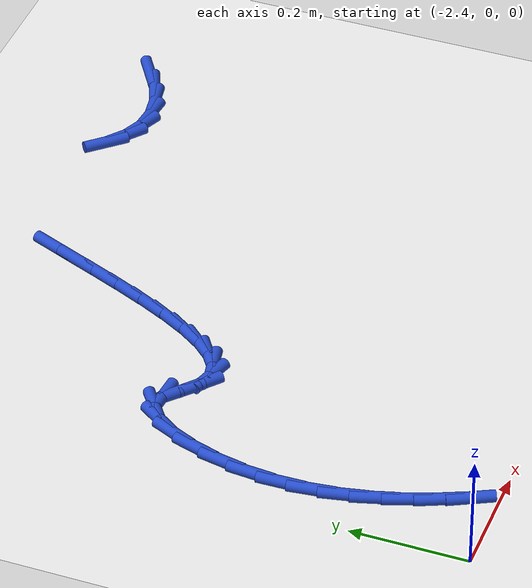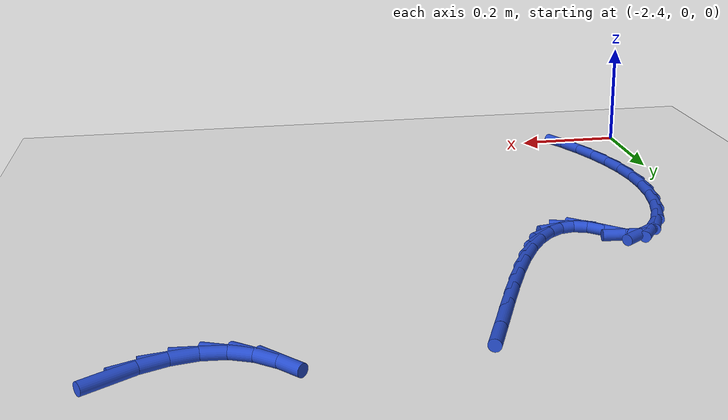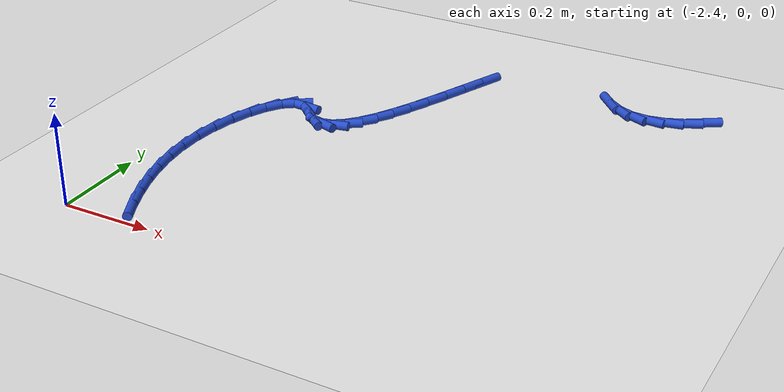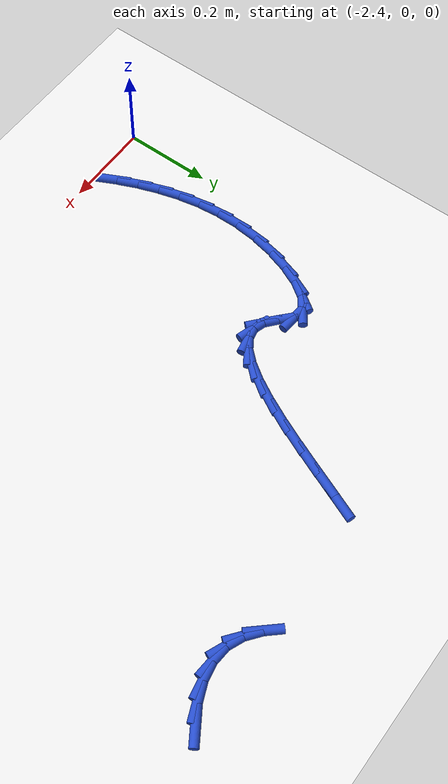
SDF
<sdf version="1.6">
 <world name="default">
  <model name="ground_plane">
   <static>1</static>
   <link name="link">
    <collision name="collision">
     <geometry><plane><normal>0 0 1</normal><size>100 100</size></plane></geometry>
     <surface><friction><ode><mu>100</mu><mu2>50</mu2></ode></friction></surface>
    </collision>
    <visual name="visual">
     <cast_shadows>0</cast_shadows>
     <geometry><plane><normal>0 0 1</normal><size>100 100</size></plane></geometry>
     <material>
      <script><uri>file://media/materials/scripts/gazebo.material</uri><name>Gazebo/WhiteGlow</name></script>
     </material>
    </visual>
   </link>
  </model>
  <model name="line">
   <link name="link_87">
    <pose>-1.4025349442492723 0.9285873915843484 0.01 0 1.57 0.5660764527378578</pose>
    <collision name="collision">
     <geometry><cylinder><radius>0.01</radius><length>0.08</length></cylinder></geometry>
    </collision>
    <visual name="visual">
     <material>
      <script><name>Gazebo/Blue</name><uri>file://media/materials/scripts/gazebo.material</uri></script>
     </material>
     <geometry><cylinder><radius>0.01</radius><length>0.08</length></cylinder></geometry>
    </visual>
   </link>
   <link name="link_88">
    <pose>-1.4384386506371187 0.9057724923210335 0.01 0 1.57 0.38805845490592716</pose>
    <collision name="collision">
     <geometry><cylinder><radius>0.01</radius><length>0.08</length></cylinder></geometry>
    </collision>
    <visual name="visual">
     <material>
      <script><name>Gazebo/Blue</name><uri>file://media/materials/scripts/gazebo.material</uri></script>
     </material>
     <geometry><cylinder><radius>0.01</radius><length>0.08</length></cylinder></geometry>
    </visual>
   </link>
   <link name="link_89">
    <pose>-1.4769204122554138 0.890041643750899 0.01 0 1.57 0.17952113242083353</pose>
    <collision name="collision">
     <geometry><cylinder><radius>0.01</radius><length>0.08</length></cylinder></geometry>
    </collision>
    <visual name="visual">
     <material>
      <script><name>Gazebo/Blue</name><uri>file://media/materials/scripts/gazebo.material</uri></script>
     </material>
     <geometry><cylinder><radius>0.01</radius><length>0.08</length></cylinder></geometry>
    </visual>
   </link>
   <link name="link_90">
    <pose>-1.5159713133353925 0.8829548874197626 0.01 0 1.57 -0.08269542943411845</pose>
    <collision name="collision">
     <geometry><cylinder><radius>0.01</radius><length>0.08</length></cylinder></geometry>
    </collision>
    <visual name="visual">
     <material>
      <script><name>Gazebo/Blue</name><uri>file://media/materials/scripts/gazebo.material</uri></script>
     </material>
     <geometry><cylinder><radius>0.01</radius><length>0.08</length></cylinder></geometry>
    </visual>
   </link>
   <link name="link_91">
    <pose>-1.5535824381082903 0.886072264873442 0.01 0 1.57 -0.3985117832205126</pose>
    <collision name="collision">
     <geometry><cylinder><radius>0.01</radius><length>0.08</length></cylinder></geometry>
    </collision>
    <visual name="visual">
     <material>
      <script><name>Gazebo/Blue</name><uri>file://media/materials/scripts/gazebo.material</uri></script>
     </material>
     <geometry><cylinder><radius>0.01</radius><length>0.08</length></cylinder></geometry>
    </visual>
   </link>
   <link name="link_92">
    <pose>-1.5879641545684764 0.9005483454843594 0.01 0 1.57 -0.6618012455043877</pose>
    <collision name="collision">
     <geometry><cylinder><radius>0.01</radius><length>0.08</length></cylinder></geometry>
    </collision>
    <visual name="visual">
     <material>
      <script><name>Gazebo/Blue</name><uri>file://media/materials/scripts/gazebo.material</uri></script>
     </material>
     <geometry><cylinder><radius>0.01</radius><length>0.08</length></cylinder></geometry>
    </visual>
   </link>
   <link name="link_93">
    <pose>-1.6188929875772953 0.9246417567655727 0.01 0 1.57 -0.8327021276823403</pose>
    <collision name="collision">
     <geometry><cylinder><radius>0.01</radius><length>0.08</length></cylinder></geometry>
    </collision>
    <visual name="visual">
     <material>
      <script><name>Gazebo/Blue</name><uri>file://media/materials/scripts/gazebo.material</uri></script>
     </material>
     <geometry><cylinder><radius>0.01</radius><length>0.08</length></cylinder></geometry>
    </visual>
   </link>
   <link name="link_107">
    <pose>-1.9172911480258716 0.8962261865186396 0.01 0 1.57 1.1850074836020938</pose>
    <collision name="collision">
     <geometry><cylinder><radius>0.01</radius><length>0.08</length></cylinder></geometry>
    </collision>
    <visual name="visual">
     <material>
      <script><name>Gazebo/Blue</name><uri>file://media/materials/scripts/gazebo.material</uri></script>
     </material>
     <geometry><cylinder><radius>0.01</radius><length>0.08</length></cylinder></geometry>
    </visual>
   </link>
   <link name="link_108">
    <pose>-1.9380207335606814 0.8451857813252498 0.01 0 1.57 1.1853528680369556</pose>
    <collision name="collision">
     <geometry><cylinder><radius>0.01</radius><length>0.08</length></cylinder></geometry>
    </collision>
    <visual name="visual">
     <material>
      <script><name>Gazebo/Blue</name><uri>file://media/materials/scripts/gazebo.material</uri></script>
     </material>
     <geometry><cylinder><radius>0.01</radius><length>0.08</length></cylinder></geometry>
    </visual>
   </link>
   <link name="link_109">
    <pose>-1.9590209984977067 0.7934276404564319 0.01 0 1.57 1.1752377018405062</pose>
    <collision name="collision">
     <geometry><cylinder><radius>0.01</radius><length>0.08</length></cylinder></geometry>
    </collision>
    <visual name="visual">
     <material>
      <script><name>Gazebo/Blue</name><uri>file://media/materials/scripts/gazebo.material</uri></script>
     </material>
     <geometry><cylinder><radius>0.01</radius><length>0.08</length></cylinder></geometry>
    </visual>
   </link>
   <link name="link_110">
    <pose>-1.9803211213497292 0.7424176546266419 0.01 0 1.57 1.1535637155977692</pose>
    <collision name="collision">
     <geometry><cylinder><radius>0.01</radius><length>0.08</length></cylinder></geometry>
    </collision>
    <visual name="visual">
     <material>
      <script><name>Gazebo/Blue</name><uri>file://media/materials/scripts/gazebo.material</uri></script>
     </material>
     <geometry><cylinder><radius>0.01</radius><length>0.08</length></cylinder></geometry>
    </visual>
   </link>
   <link name="link_111">
    <pose>-2.0019502806295306 0.6936217145503365 0.01 0 1.57 1.1173182251493785</pose>
    <collision name="collision">
     <geometry><cylinder><radius>0.01</radius><length>0.08</length></cylinder></geometry>
    </collision>
    <visual name="visual">
     <material>
      <script><name>Gazebo/Blue</name><uri>file://media/materials/scripts/gazebo.material</uri></script>
     </material>
     <geometry><cylinder><radius>0.01</radius><length>0.08</length></cylinder></geometry>
    </visual>
   </link>
   <link name="link_112">
    <pose>-2.0239376548498904 0.6485057109419716 0.01 0 1.57 1.0604705023493375</pose>
    <collision name="collision">
     <geometry><cylinder><radius>0.01</radius><length>0.08</length></cylinder></geometry>
    </collision>
    <visual name="visual">
     <material>
      <script><name>Gazebo/Blue</name><uri>file://media/materials/scripts/gazebo.material</uri></script>
     </material>
     <geometry><cylinder><radius>0.01</radius><length>0.08</length></cylinder></geometry>
    </visual>
   </link>
   <link name="link_113">
    <pose>-2.0463124225235907 0.6085355345160044 0.01 0 1.57 0.9714175561255046</pose>
    <collision name="collision">
     <geometry><cylinder><radius>0.01</radius><length>0.08</length></cylinder></geometry>
    </collision>
    <visual name="visual">
     <material>
      <script><name>Gazebo/Blue</name><uri>file://media/materials/scripts/gazebo.material</uri></script>
     </material>
     <geometry><cylinder><radius>0.01</radius><length>0.08</length></cylinder></geometry>
    </visual>
   </link>
   <link name="link_114">
    <pose>-2.0691037621634134 0.5751770759868899 0.01 0 1.57 0.8274970706766107</pose>
    <collision name="collision">
     <geometry><cylinder><radius>0.01</radius><length>0.08</length></cylinder></geometry>
    </collision>
    <visual name="visual">
     <material>
      <script><name>Gazebo/Blue</name><uri>file://media/materials/scripts/gazebo.material</uri></script>
     </material>
     <geometry><cylinder><radius>0.01</radius><length>0.08</length></cylinder></geometry>
    </visual>
   </link>
   <link name="link_115">
    <pose>-2.0923408522821383 0.5498962260690852 0.01 0 1.57 0.5859366784323105</pose>
    <collision name="collision">
     <geometry><cylinder><radius>0.01</radius><length>0.08</length></cylinder></geometry>
    </collision>
    <visual name="visual">
     <material>
      <script><name>Gazebo/Blue</name><uri>file://media/materials/scripts/gazebo.material</uri></script>
     </material>
     <geometry><cylinder><radius>0.01</radius><length>0.08</length></cylinder></geometry>
    </visual>
   </link>
   <link name="link_116">
    <pose>-2.1160528713925473 0.5341588754770464 0.01 0 1.57 0.19281463411330696</pose>
    <collision name="collision">
     <geometry><cylinder><radius>0.01</radius><length>0.08</length></cylinder></geometry>
    </collision>
    <visual name="visual">
     <material>
      <script><name>Gazebo/Blue</name><uri>file://media/materials/scripts/gazebo.material</uri></script>
     </material>
     <geometry><cylinder><radius>0.01</radius><length>0.08</length></cylinder></geometry>
    </visual>
   </link>
   <link name="link_117">
    <pose>-2.1402689980074214 0.5294309149252301 0.01 0 1.57 -0.3033680681088193</pose>
    <collision name="collision">
     <geometry><cylinder><radius>0.01</radius><length>0.08</length></cylinder></geometry>
    </collision>
    <visual name="visual">
     <material>
      <script><name>Gazebo/Blue</name><uri>file://media/materials/scripts/gazebo.material</uri></script>
     </material>
     <geometry><cylinder><radius>0.01</radius><length>0.08</length></cylinder></geometry>
    </visual>
   </link>
   <link name="link_118">
    <pose>-2.165018410639542 0.5371782351280925 0.01 0 1.57 -0.704990971469583</pose>
    <collision name="collision">
     <geometry><cylinder><radius>0.01</radius><length>0.08</length></cylinder></geometry>
    </collision>
    <visual name="visual">
     <material>
      <script><name>Gazebo/Blue</name><uri>file://media/materials/scripts/gazebo.material</uri></script>
     </material>
     <geometry><cylinder><radius>0.01</radius><length>0.08</length></cylinder></geometry>
    </visual>
   </link>
   <link name="link_119">
    <pose>-2.1903298773432733 0.5587146556413424 0.01 0 1.57 -0.7376378997931051</pose>
    <collision name="collision">
     <geometry><cylinder><radius>0.01</radius><length>0.08</length></cylinder></geometry>
    </collision>
    <visual name="visual">
     <material>
      <script><name>Gazebo/Blue</name><uri>file://media/materials/scripts/gazebo.material</uri></script>
     </material>
     <geometry><cylinder><radius>0.01</radius><length>0.08</length></cylinder></geometry>
    </visual>
   </link>
   <link name="link_120">
    <pose>-2.216195262202356 0.5822202738630822 0.01 0 1.57 -0.08412699800230153</pose>
    <collision name="collision">
     <geometry><cylinder><radius>0.01</radius><length>0.08</length></cylinder></geometry>
    </collision>
    <visual name="visual">
     <material>
      <script><name>Gazebo/Blue</name><uri>file://media/materials/scripts/gazebo.material</uri></script>
     </material>
     <geometry><cylinder><radius>0.01</radius><length>0.08</length></cylinder></geometry>
    </visual>
   </link>
   <link name="link_121">
    <pose>-2.24224068372582 0.5844165807794491 0.01 0 1.57 0.6235600047182205</pose>
    <collision name="collision">
     <geometry><cylinder><radius>0.01</radius><length>0.08</length></cylinder></geometry>
    </collision>
    <visual name="visual">
     <material>
      <script><name>Gazebo/Blue</name><uri>file://media/materials/scripts/gazebo.material</uri></script>
     </material>
     <geometry><cylinder><radius>0.01</radius><length>0.08</length></cylinder></geometry>
    </visual>
   </link>
   <link name="link_122">
    <pose>-2.2673973797924774 0.56632144120149 0.01 0 1.57 0.9696503871079706</pose>
    <collision name="collision">
     <geometry><cylinder><radius>0.01</radius><length>0.08</length></cylinder></geometry>
    </collision>
    <visual name="visual">
     <material>
      <script><name>Gazebo/Blue</name><uri>file://media/materials/scripts/gazebo.material</uri></script>
     </material>
     <geometry><cylinder><radius>0.01</radius><length>0.08</length></cylinder></geometry>
    </visual>
   </link>
   <link name="link_123">
    <pose>-2.290501511676158 0.5326331296847582 0.01 0 1.57 1.151206096547525</pose>
    <collision name="collision">
     <geometry><cylinder><radius>0.01</radius><length>0.08</length></cylinder></geometry>
    </collision>
    <visual name="visual">
     <material>
      <script><name>Gazebo/Blue</name><uri>file://media/materials/scripts/gazebo.material</uri></script>
     </material>
     <geometry><cylinder><radius>0.01</radius><length>0.08</length></cylinder></geometry>
    </visual>
   </link>
   <link name="link_124">
    <pose>-2.310389240650694 0.4880499207848046 0.01 0 1.57 1.2744049238574042</pose>
    <collision name="collision">
     <geometry><cylinder><radius>0.01</radius><length>0.08</length></cylinder></geometry>
    </collision>
    <visual name="visual">
     <material>
      <script><name>Gazebo/Blue</name><uri>file://media/materials/scripts/gazebo.material</uri></script>
     </material>
     <geometry><cylinder><radius>0.01</radius><length>0.08</length></cylinder></geometry>
    </visual>
   </link>
   <link name="link_125">
    <pose>-2.3258967279899174 0.4372700890571819 0.01 0 1.57 1.3821191101935049</pose>
    <collision name="collision">
     <geometry><cylinder><radius>0.01</radius><length>0.08</length></cylinder></geometry>
    </collision>
    <visual name="visual">
     <material>
      <script><name>Gazebo/Blue</name><uri>file://media/materials/scripts/gazebo.material</uri></script>
     </material>
     <geometry><cylinder><radius>0.01</radius><length>0.08</length></cylinder></geometry>
    </visual>
   </link>
   <link name="link_126">
    <pose>-2.3359006506889335 0.38487939770383384 0.01 0 1.57 1.4896954531738034</pose>
    <collision name="collision">
     <geometry><cylinder><radius>0.01</radius><length>0.08</length></cylinder></geometry>
    </collision>
    <visual name="visual">
     <material>
      <script><name>Gazebo/Blue</name><uri>file://media/materials/scripts/gazebo.material</uri></script>
     </material>
     <geometry><cylinder><radius>0.01</radius><length>0.08</length></cylinder></geometry>
    </visual>
   </link>
   <link name="link_127">
    <pose>-2.340103524611591 0.333170271783767 0.01 0 1.57 -1.5486922036520716</pose>
    <collision name="collision">
     <geometry><cylinder><radius>0.01</radius><length>0.08</length></cylinder></geometry>
    </collision>
    <visual name="visual">
     <material>
      <script><name>Gazebo/Blue</name><uri>file://media/materials/scripts/gazebo.material</uri></script>
     </material>
     <geometry><cylinder><radius>0.01</radius><length>0.08</length></cylinder></geometry>
    </visual>
   </link>
   <link name="link_128">
    <pose>-2.33897877356934 0.28229434029051603 0.01 0 1.57 -1.45230114894608</pose>
    <collision name="collision">
     <geometry><cylinder><radius>0.01</radius><length>0.08</length></cylinder></geometry>
    </collision>
    <visual name="visual">
     <material>
      <script><name>Gazebo/Blue</name><uri>file://media/materials/scripts/gazebo.material</uri></script>
     </material>
     <geometry><cylinder><radius>0.01</radius><length>0.08</length></cylinder></geometry>
    </visual>
   </link>
   <link name="link_129">
    <pose>-2.333029334591788 0.23232127459672444 0.01 0 1.57 -1.364173992584497</pose>
    <collision name="collision">
     <geometry><cylinder><radius>0.01</radius><length>0.08</length></cylinder></geometry>
    </collision>
    <visual name="visual">
     <material>
      <script><name>Gazebo/Blue</name><uri>file://media/materials/scripts/gazebo.material</uri></script>
     </material>
     <geometry><cylinder><radius>0.01</radius><length>0.08</length></cylinder></geometry>
    </visual>
   </link>
   <link name="link_130">
    <pose>-2.322758144708538 0.1833207460750356 0.01 0 1.57 -1.2850401585638231</pose>
    <collision name="collision">
     <geometry><cylinder><radius>0.01</radius><length>0.08</length></cylinder></geometry>
    </collision>
    <visual name="visual">
     <material>
      <script><name>Gazebo/Blue</name><uri>file://media/materials/scripts/gazebo.material</uri></script>
     </material>
     <geometry><cylinder><radius>0.01</radius><length>0.08</length></cylinder></geometry>
    </visual>
   </link>
   <link name="link_131">
    <pose>-2.308668140949198 0.1353624260980929 0.01 0 1.57 -1.215052130029131</pose>
    <collision name="collision">
     <geometry><cylinder><radius>0.01</radius><length>0.08</length></cylinder></geometry>
    </collision>
    <visual name="visual">
     <material>
      <script><name>Gazebo/Blue</name><uri>file://media/materials/scripts/gazebo.material</uri></script>
     </material>
     <geometry><cylinder><radius>0.01</radius><length>0.08</length></cylinder></geometry>
    </visual>
   </link>
   <link name="link_132">
    <pose>-2.291262260343375 0.08851598603853998 0.01 0 1.57 -1.153975184769538</pose>
    <collision name="collision">
     <geometry><cylinder><radius>0.01</radius><length>0.08</length></cylinder></geometry>
    </collision>
    <visual name="visual">
     <material>
      <script><name>Gazebo/Blue</name><uri>file://media/materials/scripts/gazebo.material</uri></script>
     </material>
     <geometry><cylinder><radius>0.01</radius><length>0.08</length></cylinder></geometry>
    </visual>
   </link>
   <link name="link_133">
    <pose>-2.2710434399206756 0.04285109726902023 0.01 0 1.57 -1.101365713417501</pose>
    <collision name="collision">
     <geometry><cylinder><radius>0.01</radius><length>0.08</length></cylinder></geometry>
    </collision>
    <visual name="visual">
     <material>
      <script><name>Gazebo/Blue</name><uri>file://media/materials/scripts/gazebo.material</uri></script>
     </material>
     <geometry><cylinder><radius>0.01</radius><length>0.08</length></cylinder></geometry>
    </visual>
   </link>
  </model>
 </world>
</sdf>
